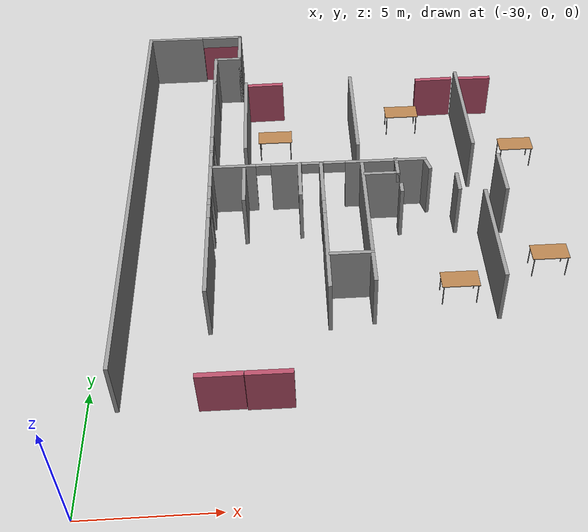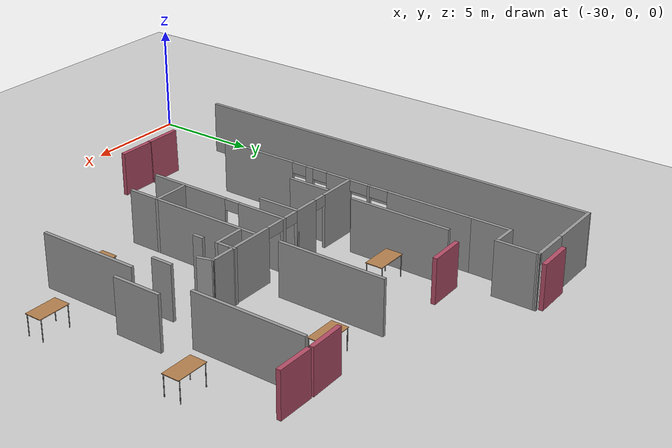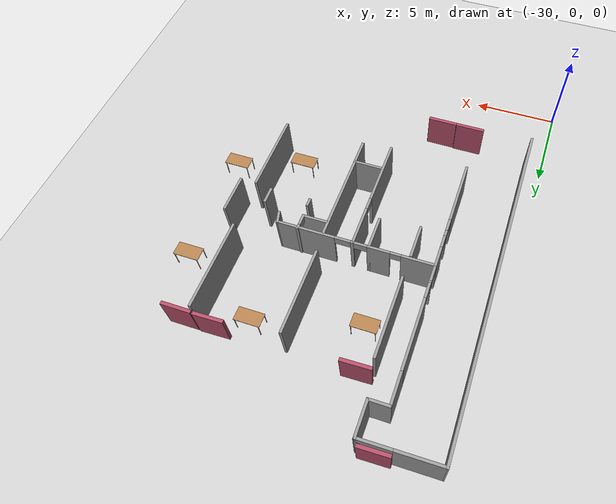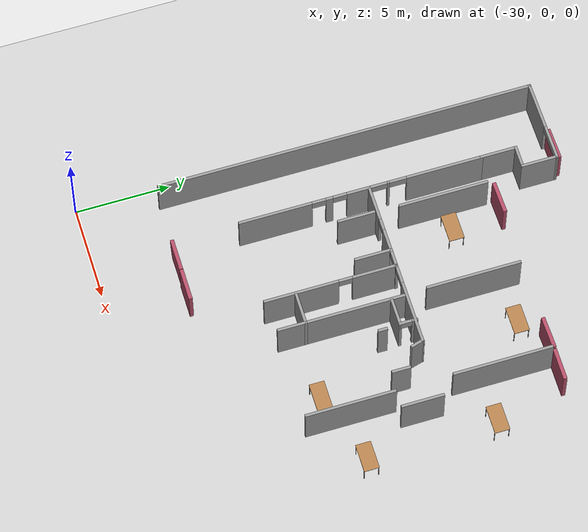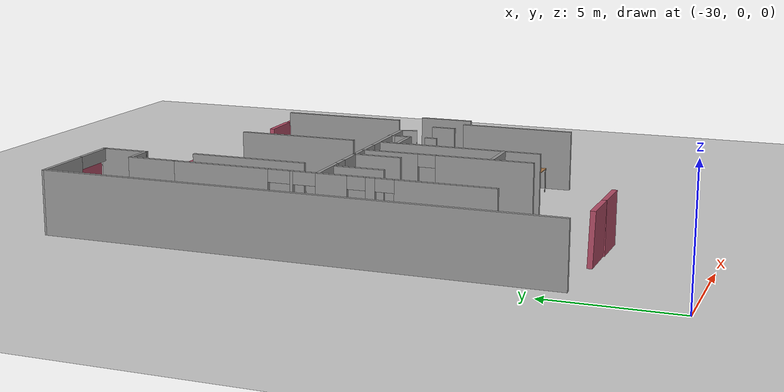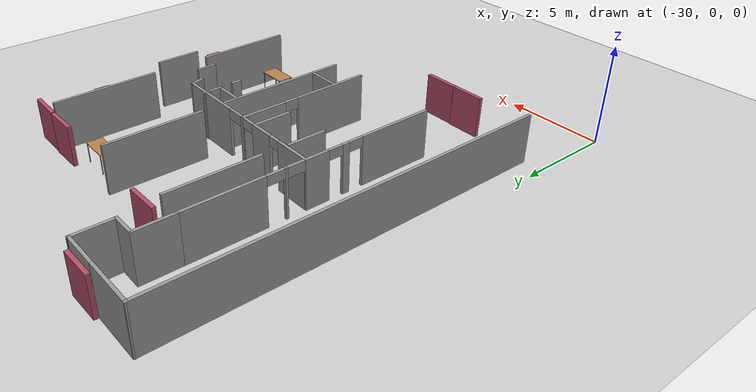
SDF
<sdf version="1.6">
 <world name="default">
  <model name="ground_plane">
   <static>1</static>
   <link name="link">
    <collision name="collision">
     <geometry><plane><normal>0 0 1</normal><size>100 100</size></plane></geometry>
     <surface><friction><ode><mu>100</mu><mu2>50</mu2></ode></friction></surface>
    </collision>
    <visual name="visual">
     <cast_shadows>0</cast_shadows>
     <geometry><plane><normal>0 0 1</normal><size>100 100</size></plane></geometry>
     <material>
      <script><uri>file://media/materials/scripts/gazebo.material</uri><name>Gazebo/Grey</name></script>
     </material>
    </visual>
   </link>
  </model>
  <model name="fin_se1f1.sdf">
   <pose>1.8125 -2.2901 0 0 -0 0</pose>
   <link name="Wall_0">
    <collision name="Wall_0_Collision">
     <geometry><box><size>20 0.15 2.5</size></box></geometry>
     <pose>0 0 1.25 0 -0 0</pose>
    </collision>
    <visual name="Wall_0_Visual">
     <pose>0 0 1.25 0 -0 0</pose>
     <geometry><box><size>20 0.15 2.5</size></box></geometry>
     <material>
      <script><uri>file://media/materials/scripts/gazebo.material</uri><name>Gazebo/Grey</name></script>
      <ambient>1 1 1 1</ambient>
     </material>
     <meta><layer>0</layer></meta>
    </visual>
    <pose>-30.7496 16.4496 0 0 0 -1.5708</pose>
   </link>
   <link name="Wall_100">
    <collision name="Wall_100_Collision">
     <geometry><box><size>2.25 0.15 2.5</size></box></geometry>
     <pose>0 0 1.25 0 -0 0</pose>
    </collision>
    <visual name="Wall_100_Visual">
     <pose>0 0 1.25 0 -0 0</pose>
     <geometry><box><size>2.25 0.15 2.5</size></box></geometry>
     <material>
      <script><uri>file://media/materials/scripts/gazebo.material</uri><name>Gazebo/Grey</name></script>
      <ambient>1 1 1 1</ambient>
     </material>
     <meta><layer>0</layer></meta>
    </visual>
    <pose>-15.464 15.7396 0 0 -0 1.5708</pose>
   </link>
   <link name="Wall_114">
    <collision name="Wall_114_Collision">
     <geometry><box><size>2 0.15 2.5</size></box></geometry>
     <pose>0 0 1.25 0 -0 0</pose>
    </collision>
    <visual name="Wall_114_Visual">
     <pose>0 0 1.25 0 -0 0</pose>
     <geometry><box><size>2 0.15 2.5</size></box></geometry>
     <material>
      <script><uri>file://media/materials/scripts/gazebo.material</uri><name>Gazebo/Grey</name></script>
      <ambient>1 1 1 1</ambient>
     </material>
     <meta><layer>0</layer></meta>
    </visual>
    <pose>-26.1645 15.6146 0 0 -0 1.5708</pose>
   </link>
   <link name="Wall_116">
    <collision name="Wall_116_Collision">
     <geometry><box><size>2 0.15 2.5</size></box></geometry>
     <pose>0 0 1.25 0 -0 0</pose>
    </collision>
    <visual name="Wall_116_Visual">
     <pose>0 0 1.25 0 -0 0</pose>
     <geometry><box><size>2 0.15 2.5</size></box></geometry>
     <material>
      <script><uri>file://media/materials/scripts/gazebo.material</uri><name>Gazebo/Grey</name></script>
      <ambient>1 1 1 1</ambient>
     </material>
     <meta><layer>0</layer></meta>
    </visual>
    <pose>-23.8638 15.7977 0 0 0 -1.5708</pose>
   </link>
   <link name="Wall_118">
    <collision name="Wall_118_Collision">
     <geometry><box><size>1.75 0.15 2.5</size></box></geometry>
     <pose>0 0 1.25 0 -0 0</pose>
    </collision>
    <visual name="Wall_118_Visual">
     <pose>0 0 1.25 0 -0 0</pose>
     <geometry><box><size>1.75 0.15 2.5</size></box></geometry>
     <material>
      <script><uri>file://media/materials/scripts/gazebo.material</uri><name>Gazebo/Grey</name></script>
      <ambient>1 1 1 1</ambient>
     </material>
     <meta><layer>0</layer></meta>
    </visual>
    <pose>-22.0422 11.426 0 0 -0 3.14159</pose>
   </link>
   <link name="Wall_120">
    <pose>-19.7977 16.3512 0 0 0 -1.5708</pose>
    <visual name="Wall_120_Visual_0">
     <pose>-0.341993 0 1.25 0 -0 0</pose>
     <geometry><box><size>0.316013 0.15 2.5</size></box></geometry>
     <material>
      <script><uri>file://media/materials/scripts/gazebo.material</uri><name>Gazebo/Grey</name></script>
      <ambient>1 1 1 1</ambient>
     </material>
     <meta><layer>0</layer></meta>
    </visual>
    <collision name="Wall_120_Collision_0">
     <geometry><box><size>0.316013 0.15 2.5</size></box></geometry>
     <pose>-0.341993 0 1.25 0 -0 0</pose>
    </collision>
    <visual name="Wall_120_Visual_1">
     <pose>0.158007 0 2.25 0 -0 0</pose>
     <geometry><box><size>0.683987 0.15 0.5</size></box></geometry>
     <material>
      <script><uri>file://media/materials/scripts/gazebo.material</uri><name>Gazebo/Grey</name></script>
      <ambient>1 1 1 1</ambient>
     </material>
     <meta><layer>0</layer></meta>
    </visual>
    <collision name="Wall_120_Collision_1">
     <geometry><box><size>0.683987 0.15 0.5</size></box></geometry>
     <pose>0.158007 0 2.25 0 -0 0</pose>
    </collision>
   </link>
   <link name="Wall_121">
    <collision name="Wall_121_Collision">
     <geometry><box><size>1.5 0.15 2.5</size></box></geometry>
     <pose>0 0 1.25 0 -0 0</pose>
    </collision>
    <visual name="Wall_121_Visual">
     <pose>0 0 1.25 0 -0 0</pose>
     <geometry><box><size>1.5 0.15 2.5</size></box></geometry>
     <material>
      <script><uri>file://media/materials/scripts/gazebo.material</uri><name>Gazebo/Grey</name></script>
      <ambient>1 1 1 1</ambient>
     </material>
     <meta><layer>0</layer></meta>
    </visual>
    <pose>-20.4727 15.9262 0 0 -0 3.14159</pose>
   </link>
   <link name="Wall_123">
    <collision name="Wall_123_Collision">
     <geometry><box><size>0.5 0.15 2.5</size></box></geometry>
     <pose>0 0 1.25 0 -0 0</pose>
    </collision>
    <visual name="Wall_123_Visual">
     <pose>0 0 1.25 0 -0 0</pose>
     <geometry><box><size>0.5 0.15 2.5</size></box></geometry>
     <material>
      <script><uri>file://media/materials/scripts/gazebo.material</uri><name>Gazebo/Grey</name></script>
      <ambient>1 1 1 1</ambient>
     </material>
     <meta><layer>0</layer></meta>
    </visual>
    <pose>-19.7442 14.9961 0 0 0 -1.5708</pose>
   </link>
   <link name="Wall_125">
    <collision name="Wall_125_Collision">
     <geometry><box><size>1 0.15 2.5</size></box></geometry>
     <pose>0 0 1.25 0 -0 0</pose>
    </collision>
    <visual name="Wall_125_Visual">
     <pose>0 0 1.25 0 -0 0</pose>
     <geometry><box><size>1 0.15 2.5</size></box></geometry>
     <material>
      <script><uri>file://media/materials/scripts/gazebo.material</uri><name>Gazebo/Grey</name></script>
      <ambient>1 1 1 1</ambient>
     </material>
     <meta><layer>0</layer></meta>
    </visual>
    <pose>-17.39 15.2276 0 0 0 -1.5708</pose>
   </link>
   <link name="Wall_23">
    <collision name="Wall_23_Collision">
     <geometry><box><size>2 0.15 2.5</size></box></geometry>
     <pose>0 0 1.25 0 -0 0</pose>
    </collision>
    <visual name="Wall_23_Visual">
     <pose>0 0 1.25 0 -0 0</pose>
     <geometry><box><size>2 0.15 2.5</size></box></geometry>
     <material>
      <script><uri>file://media/materials/scripts/gazebo.material</uri><name>Gazebo/Grey</name></script>
      <ambient>1 1 1 1</ambient>
     </material>
     <meta><layer>0</layer></meta>
    </visual>
    <pose>-27.5496 23.6496 0 0 -0 1.5708</pose>
   </link>
   <link name="Wall_24">
    <collision name="Wall_24_Collision">
     <geometry><box><size>1.25 0.15 2.5</size></box></geometry>
     <pose>0 0 1.25 0 -0 0</pose>
    </collision>
    <visual name="Wall_24_Visual">
     <pose>0 0 1.25 0 -0 0</pose>
     <geometry><box><size>1.25 0.15 2.5</size></box></geometry>
     <material>
      <script><uri>file://media/materials/scripts/gazebo.material</uri><name>Gazebo/Grey</name></script>
      <ambient>1 1 1 1</ambient>
     </material>
     <meta><layer>0</layer></meta>
    </visual>
    <pose>-26.9996 24.5746 0 0 -0 0</pose>
   </link>
   <link name="Wall_25">
    <collision name="Wall_25_Collision">
     <geometry><box><size>2 0.15 2.5</size></box></geometry>
     <pose>0 0 1.25 0 -0 0</pose>
    </collision>
    <visual name="Wall_25_Visual">
     <pose>0 0 1.25 0 -0 0</pose>
     <geometry><box><size>2 0.15 2.5</size></box></geometry>
     <material>
      <script><uri>file://media/materials/scripts/gazebo.material</uri><name>Gazebo/Grey</name></script>
      <ambient>1 1 1 1</ambient>
     </material>
     <meta><layer>0</layer></meta>
    </visual>
    <pose>-26.4496 25.4996 0 0 -0 1.5708</pose>
   </link>
   <link name="Wall_27">
    <pose>-28.5996 26.3996 0 0 0 -3.12996</pose>
    <visual name="Wall_27_Visual_0">
     <pose>-2.20066 0 1.25 0 -0 0</pose>
     <geometry><box><size>0.048973 0.15 2.5</size></box></geometry>
     <material>
      <script><uri>file://media/materials/scripts/gazebo.material</uri><name>Gazebo/Grey</name></script>
      <ambient>1 1 1 1</ambient>
     </material>
     <meta><layer>0</layer></meta>
    </visual>
    <collision name="Wall_27_Collision_0">
     <geometry><box><size>0.048973 0.15 2.5</size></box></geometry>
     <pose>-2.20066 0 1.25 0 -0 0</pose>
    </collision>
    <visual name="Wall_27_Visual_1">
     <pose>0.939694 0 1.25 0 -0 0</pose>
     <geometry><box><size>2.5709 0.15 2.5</size></box></geometry>
     <material>
      <script><uri>file://media/materials/scripts/gazebo.material</uri><name>Gazebo/Grey</name></script>
      <ambient>1 1 1 1</ambient>
     </material>
     <meta><layer>0</layer></meta>
    </visual>
    <collision name="Wall_27_Collision_1">
     <geometry><box><size>2.5709 0.15 2.5</size></box></geometry>
     <pose>0.939694 0 1.25 0 -0 0</pose>
    </collision>
    <visual name="Wall_27_Visual_2">
     <pose>-1.26096 0 2.25 0 -0 0</pose>
     <geometry><box><size>1.83041 0.15 0.5</size></box></geometry>
     <material>
      <script><uri>file://media/materials/scripts/gazebo.material</uri><name>Gazebo/Grey</name></script>
      <ambient>1 1 1 1</ambient>
     </material>
     <meta><layer>0</layer></meta>
    </visual>
    <collision name="Wall_27_Collision_2">
     <geometry><box><size>1.83041 0.15 0.5</size></box></geometry>
     <pose>-1.26096 0 2.25 0 -0 0</pose>
    </collision>
   </link>
   <link name="Wall_29">
    <pose>-27.5496 16.2996 0 0 0 -1.5708</pose>
    <visual name="Wall_29_Visual_0">
     <pose>-4.45394 0 1.25 0 -0 0</pose>
     <geometry><box><size>4.09211 0.15 2.5</size></box></geometry>
     <material>
      <script><uri>file://media/materials/scripts/gazebo.material</uri><name>Gazebo/Grey</name></script>
      <ambient>1 1 1 1</ambient>
     </material>
     <meta><layer>0</layer></meta>
    </visual>
    <collision name="Wall_29_Collision_0">
     <geometry><box><size>4.09211 0.15 2.5</size></box></geometry>
     <pose>-4.45394 0 1.25 0 -0 0</pose>
    </collision>
    <visual name="Wall_29_Visual_1">
     <pose>-1.44499 0 1.25 0 -0 0</pose>
     <geometry><box><size>0.125793 0.15 2.5</size></box></geometry>
     <material>
      <script><uri>file://media/materials/scripts/gazebo.material</uri><name>Gazebo/Grey</name></script>
      <ambient>1 1 1 1</ambient>
     </material>
     <meta><layer>0</layer></meta>
    </visual>
    <collision name="Wall_29_Collision_1">
     <geometry><box><size>0.125793 0.15 2.5</size></box></geometry>
     <pose>-1.44499 0 1.25 0 -0 0</pose>
    </collision>
    <visual name="Wall_29_Visual_2">
     <pose>0.143983 0 1.25 0 -0 0</pose>
     <geometry><box><size>1.25215 0.15 2.5</size></box></geometry>
     <material>
      <script><uri>file://media/materials/scripts/gazebo.material</uri><name>Gazebo/Grey</name></script>
      <ambient>1 1 1 1</ambient>
     </material>
     <meta><layer>0</layer></meta>
    </visual>
    <collision name="Wall_29_Collision_2">
     <geometry><box><size>1.25215 0.15 2.5</size></box></geometry>
     <pose>0.143983 0 1.25 0 -0 0</pose>
    </collision>
    <visual name="Wall_29_Visual_3">
     <pose>1.69273 0 1.25 0 -0 0</pose>
     <geometry><box><size>0.367155 0.15 2.5</size></box></geometry>
     <material>
      <script><uri>file://media/materials/scripts/gazebo.material</uri><name>Gazebo/Grey</name></script>
      <ambient>1 1 1 1</ambient>
     </material>
     <meta><layer>0</layer></meta>
    </visual>
    <collision name="Wall_29_Collision_3">
     <geometry><box><size>0.367155 0.15 2.5</size></box></geometry>
     <pose>1.69273 0 1.25 0 -0 0</pose>
    </collision>
    <visual name="Wall_29_Visual_4">
     <pose>4.5577 0 1.25 0 -0 0</pose>
     <geometry><box><size>3.8846 0.15 2.5</size></box></geometry>
     <material>
      <script><uri>file://media/materials/scripts/gazebo.material</uri><name>Gazebo/Grey</name></script>
      <ambient>1 1 1 1</ambient>
     </material>
     <meta><layer>0</layer></meta>
    </visual>
    <collision name="Wall_29_Collision_4">
     <geometry><box><size>3.8846 0.15 2.5</size></box></geometry>
     <pose>4.5577 0 1.25 0 -0 0</pose>
    </collision>
    <visual name="Wall_29_Visual_5">
     <pose>-1.95789 0 2.25 0 -0 0</pose>
     <geometry><box><size>0.9 0.15 0.5</size></box></geometry>
     <material>
      <script><uri>file://media/materials/scripts/gazebo.material</uri><name>Gazebo/Grey</name></script>
      <ambient>1 1 1 1</ambient>
     </material>
     <meta><layer>0</layer></meta>
    </visual>
    <collision name="Wall_29_Collision_5">
     <geometry><box><size>0.9 0.15 0.5</size></box></geometry>
     <pose>-1.95789 0 2.25 0 -0 0</pose>
    </collision>
    <visual name="Wall_29_Visual_6">
     <pose>-0.932093 0 2.25 0 -0 0</pose>
     <geometry><box><size>0.9 0.15 0.5</size></box></geometry>
     <material>
      <script><uri>file://media/materials/scripts/gazebo.material</uri><name>Gazebo/Grey</name></script>
      <ambient>1 1 1 1</ambient>
     </material>
     <meta><layer>0</layer></meta>
    </visual>
    <collision name="Wall_29_Collision_6">
     <geometry><box><size>0.9 0.15 0.5</size></box></geometry>
     <pose>-0.932093 0 2.25 0 -0 0</pose>
    </collision>
    <visual name="Wall_29_Visual_7">
     <pose>1.1396 0 2.25 0 -0 0</pose>
     <geometry><box><size>0.739091 0.15 0.5</size></box></geometry>
     <material>
      <script><uri>file://media/materials/scripts/gazebo.material</uri><name>Gazebo/Grey</name></script>
      <ambient>1 1 1 1</ambient>
     </material>
     <meta><layer>0</layer></meta>
    </visual>
    <collision name="Wall_29_Collision_7">
     <geometry><box><size>0.739091 0.15 0.5</size></box></geometry>
     <pose>1.1396 0 2.25 0 -0 0</pose>
    </collision>
    <visual name="Wall_29_Visual_8">
     <pose>2.24585 0 2.25 0 -0 0</pose>
     <geometry><box><size>0.739091 0.15 0.5</size></box></geometry>
     <material>
      <script><uri>file://media/materials/scripts/gazebo.material</uri><name>Gazebo/Grey</name></script>
      <ambient>1 1 1 1</ambient>
     </material>
     <meta><layer>0</layer></meta>
    </visual>
    <collision name="Wall_29_Collision_8">
     <geometry><box><size>0.739091 0.15 0.5</size></box></geometry>
     <pose>2.24585 0 2.25 0 -0 0</pose>
    </collision>
   </link>
   <link name="Wall_67">
    <collision name="Wall_67_Collision">
     <geometry><box><size>4.75 0.15 2.5</size></box></geometry>
     <pose>0 0 1.25 0 -0 0</pose>
    </collision>
    <visual name="Wall_67_Visual">
     <pose>0 0 1.25 0 -0 0</pose>
     <geometry><box><size>4.75 0.15 2.5</size></box></geometry>
     <material>
      <script><uri>file://media/materials/scripts/gazebo.material</uri><name>Gazebo/Grey</name></script>
      <ambient>1 1 1 1</ambient>
     </material>
     <meta><layer>0</layer></meta>
    </visual>
    <pose>-26.1152 20.2344 0 0 0 -1.5708</pose>
   </link>
   <link name="Wall_84">
    <collision name="Wall_84_Collision">
     <geometry><box><size>5.25 0.15 2.5</size></box></geometry>
     <pose>0 0 1.25 0 -0 0</pose>
    </collision>
    <visual name="Wall_84_Visual">
     <pose>0 0 1.25 0 -0 0</pose>
     <geometry><box><size>5.25 0.15 2.5</size></box></geometry>
     <material>
      <script><uri>file://media/materials/scripts/gazebo.material</uri><name>Gazebo/Grey</name></script>
      <ambient>1 1 1 1</ambient>
     </material>
     <meta><layer>0</layer></meta>
    </visual>
    <pose>-16.3938 20.2305 0 0 0 -1.5708</pose>
   </link>
   <link name="Wall_86">
    <collision name="Wall_86_Collision">
     <geometry><box><size>5 0.15 2.5</size></box></geometry>
     <pose>0 0 1.25 0 -0 0</pose>
    </collision>
    <visual name="Wall_86_Visual">
     <pose>0 0 1.25 0 -0 0</pose>
     <geometry><box><size>5 0.15 2.5</size></box></geometry>
     <material>
      <script><uri>file://media/materials/scripts/gazebo.material</uri><name>Gazebo/Grey</name></script>
      <ambient>1 1 1 1</ambient>
     </material>
     <meta><layer>0</layer></meta>
    </visual>
    <pose>-21.316 20.294 0 0 0 -1.5708</pose>
   </link>
   <link name="Wall_91">
    <pose>-23.0235 16.7227 0 0 -0 0</pose>
    <visual name="Wall_91_Visual_0">
     <pose>-3.57417 0 1.25 0 -0 0</pose>
     <geometry><box><size>1.85166 0.15 2.5</size></box></geometry>
     <material>
      <script><uri>file://media/materials/scripts/gazebo.material</uri><name>Gazebo/Grey</name></script>
      <ambient>1 1 1 1</ambient>
     </material>
     <meta><layer>0</layer></meta>
    </visual>
    <collision name="Wall_91_Collision_0">
     <geometry><box><size>1.85166 0.15 2.5</size></box></geometry>
     <pose>-3.57417 0 1.25 0 -0 0</pose>
    </collision>
    <visual name="Wall_91_Visual_1">
     <pose>-1.38374 0 1.25 0 -0 0</pose>
     <geometry><box><size>1.29238 0.15 2.5</size></box></geometry>
     <material>
      <script><uri>file://media/materials/scripts/gazebo.material</uri><name>Gazebo/Grey</name></script>
      <ambient>1 1 1 1</ambient>
     </material>
     <meta><layer>0</layer></meta>
    </visual>
    <collision name="Wall_91_Collision_1">
     <geometry><box><size>1.29238 0.15 2.5</size></box></geometry>
     <pose>-1.38374 0 1.25 0 -0 0</pose>
    </collision>
    <visual name="Wall_91_Visual_2">
     <pose>0.094604 0 1.25 0 -0 0</pose>
     <geometry><box><size>0.186132 0.15 2.5</size></box></geometry>
     <material>
      <script><uri>file://media/materials/scripts/gazebo.material</uri><name>Gazebo/Grey</name></script>
      <ambient>1 1 1 1</ambient>
     </material>
     <meta><layer>0</layer></meta>
    </visual>
    <collision name="Wall_91_Collision_2">
     <geometry><box><size>0.186132 0.15 2.5</size></box></geometry>
     <pose>0.094604 0 1.25 0 -0 0</pose>
    </collision>
    <visual name="Wall_91_Visual_3">
     <pose>2.79384 0 1.25 0 -0 0</pose>
     <geometry><box><size>3.41233 0.15 2.5</size></box></geometry>
     <material>
      <script><uri>file://media/materials/scripts/gazebo.material</uri><name>Gazebo/Grey</name></script>
      <ambient>1 1 1 1</ambient>
     </material>
     <meta><layer>0</layer></meta>
    </visual>
    <collision name="Wall_91_Collision_3">
     <geometry><box><size>3.41233 0.15 2.5</size></box></geometry>
     <pose>2.79384 0 1.25 0 -0 0</pose>
    </collision>
    <visual name="Wall_91_Visual_4">
     <pose>-2.33914 0 2.25 0 -0 0</pose>
     <geometry><box><size>0.61841 0.15 0.5</size></box></geometry>
     <material>
      <script><uri>file://media/materials/scripts/gazebo.material</uri><name>Gazebo/Grey</name></script>
      <ambient>1 1 1 1</ambient>
     </material>
     <meta><layer>0</layer></meta>
    </visual>
    <collision name="Wall_91_Collision_4">
     <geometry><box><size>0.61841 0.15 0.5</size></box></geometry>
     <pose>-2.33914 0 2.25 0 -0 0</pose>
    </collision>
    <visual name="Wall_91_Visual_5">
     <pose>-0.368008 0 2.25 0 -0 0</pose>
     <geometry><box><size>0.739091 0.15 0.5</size></box></geometry>
     <material>
      <script><uri>file://media/materials/scripts/gazebo.material</uri><name>Gazebo/Grey</name></script>
      <ambient>1 1 1 1</ambient>
     </material>
     <meta><layer>0</layer></meta>
    </visual>
    <collision name="Wall_91_Collision_5">
     <geometry><box><size>0.739091 0.15 0.5</size></box></geometry>
     <pose>-0.368008 0 2.25 0 -0 0</pose>
    </collision>
    <visual name="Wall_91_Visual_6">
     <pose>0.637671 0 2.25 0 -0 0</pose>
     <geometry><box><size>0.9 0.15 0.5</size></box></geometry>
     <material>
      <script><uri>file://media/materials/scripts/gazebo.material</uri><name>Gazebo/Grey</name></script>
      <ambient>1 1 1 1</ambient>
     </material>
     <meta><layer>0</layer></meta>
    </visual>
    <collision name="Wall_91_Collision_6">
     <geometry><box><size>0.9 0.15 0.5</size></box></geometry>
     <pose>0.637671 0 2.25 0 -0 0</pose>
    </collision>
   </link>
   <link name="Wall_92">
    <collision name="Wall_92_Collision">
     <geometry><box><size>0.75 0.15 2.5</size></box></geometry>
     <pose>0 0 1.25 0 -0 0</pose>
    </collision>
    <visual name="Wall_92_Visual">
     <pose>0 0 1.25 0 -0 0</pose>
     <geometry><box><size>0.75 0.15 2.5</size></box></geometry>
     <material>
      <script><uri>file://media/materials/scripts/gazebo.material</uri><name>Gazebo/Grey</name></script>
      <ambient>1 1 1 1</ambient>
     </material>
     <meta><layer>0</layer></meta>
    </visual>
    <pose>-18.5209 16.4329 0 0 0 -1.309</pose>
   </link>
   <link name="Wall_94">
    <collision name="Wall_94_Collision">
     <geometry><box><size>6.75 0.15 2.5</size></box></geometry>
     <pose>0 0 1.25 0 -0 0</pose>
    </collision>
    <visual name="Wall_94_Visual">
     <pose>0 0 1.25 0 -0 0</pose>
     <geometry><box><size>6.75 0.15 2.5</size></box></geometry>
     <material>
      <script><uri>file://media/materials/scripts/gazebo.material</uri><name>Gazebo/Grey</name></script>
      <ambient>1 1 1 1</ambient>
     </material>
     <meta><layer>0</layer></meta>
    </visual>
    <pose>-21.2422 13.3157 0 0 0 -1.5708</pose>
   </link>
   <link name="Wall_96">
    <pose>-22.9543 13.2442 0 0 0 -1.5708</pose>
    <visual name="Wall_96_Visual_0">
     <pose>-2.32948 0 1.25 0 -0 0</pose>
     <geometry><box><size>2.34105 0.15 2.5</size></box></geometry>
     <material>
      <script><uri>file://media/materials/scripts/gazebo.material</uri><name>Gazebo/Grey</name></script>
      <ambient>1 1 1 1</ambient>
     </material>
     <meta><layer>0</layer></meta>
    </visual>
    <collision name="Wall_96_Collision_0">
     <geometry><box><size>2.34105 0.15 2.5</size></box></geometry>
     <pose>-2.32948 0 1.25 0 -0 0</pose>
    </collision>
    <visual name="Wall_96_Visual_1">
     <pose>1.53001 0 1.25 0 -0 0</pose>
     <geometry><box><size>3.93998 0.15 2.5</size></box></geometry>
     <material>
      <script><uri>file://media/materials/scripts/gazebo.material</uri><name>Gazebo/Grey</name></script>
      <ambient>1 1 1 1</ambient>
     </material>
     <meta><layer>0</layer></meta>
    </visual>
    <collision name="Wall_96_Collision_1">
     <geometry><box><size>3.93998 0.15 2.5</size></box></geometry>
     <pose>1.53001 0 1.25 0 -0 0</pose>
    </collision>
    <visual name="Wall_96_Visual_2">
     <pose>-0.799464 0 2.25 0 -0 0</pose>
     <geometry><box><size>0.718978 0.15 0.5</size></box></geometry>
     <material>
      <script><uri>file://media/materials/scripts/gazebo.material</uri><name>Gazebo/Grey</name></script>
      <ambient>1 1 1 1</ambient>
     </material>
     <meta><layer>0</layer></meta>
    </visual>
    <collision name="Wall_96_Collision_2">
     <geometry><box><size>0.718978 0.15 0.5</size></box></geometry>
     <pose>-0.799464 0 2.25 0 -0 0</pose>
    </collision>
   </link>
   <link name="Wall_98">
    <collision name="Wall_98_Collision">
     <geometry><box><size>4.75 0.15 2.5</size></box></geometry>
     <pose>0 0 1.25 0 -0 0</pose>
    </collision>
    <visual name="Wall_98_Visual">
     <pose>0 0 1.25 0 -0 0</pose>
     <geometry><box><size>4.75 0.15 2.5</size></box></geometry>
     <material>
      <script><uri>file://media/materials/scripts/gazebo.material</uri><name>Gazebo/Grey</name></script>
      <ambient>1 1 1 1</ambient>
     </material>
     <meta><layer>0</layer></meta>
    </visual>
    <pose>-16.3735 12.2826 0 0 0 -1.5708</pose>
   </link>
   <static>1</static>
  </model>
  <model name="table">
   <static>1</static>
   <link name="link">
    <collision name="surface">
     <pose>0 0 1 0 -0 0</pose>
     <geometry><box><size>1.5 0.8 0.03</size></box></geometry>
     <surface><friction><ode><mu>0.6</mu><mu2>0.6</mu2></ode></friction></surface>
    </collision>
    <visual name="visual1">
     <pose>0 0 1 0 -0 0</pose>
     <geometry><box><size>1.5 0.8 0.03</size></box></geometry>
     <material>
      <script><uri>file://media/materials/scripts/gazebo.material</uri><name>Gazebo/Wood</name></script>
     </material>
    </visual>
    <collision name="front_left_leg">
     <pose>0.68 0.38 0.5 0 -0 0</pose>
     <geometry><cylinder><radius>0.02</radius><length>1</length></cylinder></geometry>
    </collision>
    <visual name="front_left_leg">
     <pose>0.68 0.38 0.5 0 -0 0</pose>
     <geometry><cylinder><radius>0.02</radius><length>1</length></cylinder></geometry>
     <material>
      <script><uri>file://media/materials/scripts/gazebo.material</uri><name>Gazebo/Grey</name></script>
     </material>
    </visual>
    <collision name="front_right_leg">
     <pose>0.68 -0.38 0.5 0 -0 0</pose>
     <geometry><cylinder><radius>0.02</radius><length>1</length></cylinder></geometry>
    </collision>
    <visual name="front_right_leg">
     <pose>0.68 -0.38 0.5 0 -0 0</pose>
     <geometry><cylinder><radius>0.02</radius><length>1</length></cylinder></geometry>
     <material>
      <script><uri>file://media/materials/scripts/gazebo.material</uri><name>Gazebo/Grey</name></script>
     </material>
    </visual>
    <collision name="back_right_leg">
     <pose>-0.68 -0.38 0.5 0 -0 0</pose>
     <geometry><cylinder><radius>0.02</radius><length>1</length></cylinder></geometry>
    </collision>
    <visual name="back_right_leg">
     <pose>-0.68 -0.38 0.5 0 -0 0</pose>
     <geometry><cylinder><radius>0.02</radius><length>1</length></cylinder></geometry>
     <material>
      <script><uri>file://media/materials/scripts/gazebo.material</uri><name>Gazebo/Grey</name></script>
     </material>
    </visual>
    <collision name="back_left_leg">
     <pose>-0.68 0.38 0.5 0 -0 0</pose>
     <geometry><cylinder><radius>0.02</radius><length>1</length></cylinder></geometry>
    </collision>
    <visual name="back_left_leg">
     <pose>-0.68 0.38 0.5 0 -0 0</pose>
     <geometry><cylinder><radius>0.02</radius><length>1</length></cylinder></geometry>
     <material>
      <script><uri>file://media/materials/scripts/gazebo.material</uri><name>Gazebo/Grey</name></script>
     </material>
    </visual>
   </link>
   <pose>-23.0593 18.0717 0 0 -0 0</pose>
  </model>
  <model name="table_0">
   <static>1</static>
   <link name="link">
    <collision name="surface">
     <pose>0 0 1 0 -0 0</pose>
     <geometry><box><size>1.5 0.8 0.03</size></box></geometry>
     <surface><friction><ode><mu>0.6</mu><mu2>0.6</mu2></ode></friction></surface>
    </collision>
    <visual name="visual1">
     <pose>0 0 1 0 -0 0</pose>
     <geometry><box><size>1.5 0.8 0.03</size></box></geometry>
     <material>
      <script><uri>file://media/materials/scripts/gazebo.material</uri><name>Gazebo/Wood</name></script>
     </material>
    </visual>
    <collision name="front_left_leg">
     <pose>0.68 0.38 0.5 0 -0 0</pose>
     <geometry><cylinder><radius>0.02</radius><length>1</length></cylinder></geometry>
    </collision>
    <visual name="front_left_leg">
     <pose>0.68 0.38 0.5 0 -0 0</pose>
     <geometry><cylinder><radius>0.02</radius><length>1</length></cylinder></geometry>
     <material>
      <script><uri>file://media/materials/scripts/gazebo.material</uri><name>Gazebo/Grey</name></script>
     </material>
    </visual>
    <collision name="front_right_leg">
     <pose>0.68 -0.38 0.5 0 -0 0</pose>
     <geometry><cylinder><radius>0.02</radius><length>1</length></cylinder></geometry>
    </collision>
    <visual name="front_right_leg">
     <pose>0.68 -0.38 0.5 0 -0 0</pose>
     <geometry><cylinder><radius>0.02</radius><length>1</length></cylinder></geometry>
     <material>
      <script><uri>file://media/materials/scripts/gazebo.material</uri><name>Gazebo/Grey</name></script>
     </material>
    </visual>
    <collision name="back_right_leg">
     <pose>-0.68 -0.38 0.5 0 -0 0</pose>
     <geometry><cylinder><radius>0.02</radius><length>1</length></cylinder></geometry>
    </collision>
    <visual name="back_right_leg">
     <pose>-0.68 -0.38 0.5 0 -0 0</pose>
     <geometry><cylinder><radius>0.02</radius><length>1</length></cylinder></geometry>
     <material>
      <script><uri>file://media/materials/scripts/gazebo.material</uri><name>Gazebo/Grey</name></script>
     </material>
    </visual>
    <collision name="back_left_leg">
     <pose>-0.68 0.38 0.5 0 -0 0</pose>
     <geometry><cylinder><radius>0.02</radius><length>1</length></cylinder></geometry>
    </collision>
    <visual name="back_left_leg">
     <pose>-0.68 0.38 0.5 0 -0 0</pose>
     <geometry><cylinder><radius>0.02</radius><length>1</length></cylinder></geometry>
     <material>
      <script><uri>file://media/materials/scripts/gazebo.material</uri><name>Gazebo/Grey</name></script>
     </material>
    </visual>
   </link>
   <pose>-17.1552 19.6086 0 0 -0 0</pose>
  </model>
  <model name="table_1">
   <static>1</static>
   <link name="link">
    <collision name="surface">
     <pose>0 0 1 0 -0 0</pose>
     <geometry><box><size>1.5 0.8 0.03</size></box></geometry>
     <surface><friction><ode><mu>0.6</mu><mu2>0.6</mu2></ode></friction></surface>
    </collision>
    <visual name="visual1">
     <pose>0 0 1 0 -0 0</pose>
     <geometry><box><size>1.5 0.8 0.03</size></box></geometry>
     <material>
      <script><uri>file://media/materials/scripts/gazebo.material</uri><name>Gazebo/Wood</name></script>
     </material>
    </visual>
    <collision name="front_left_leg">
     <pose>0.68 0.38 0.5 0 -0 0</pose>
     <geometry><cylinder><radius>0.02</radius><length>1</length></cylinder></geometry>
    </collision>
    <visual name="front_left_leg">
     <pose>0.68 0.38 0.5 0 -0 0</pose>
     <geometry><cylinder><radius>0.02</radius><length>1</length></cylinder></geometry>
     <material>
      <script><uri>file://media/materials/scripts/gazebo.material</uri><name>Gazebo/Grey</name></script>
     </material>
    </visual>
    <collision name="front_right_leg">
     <pose>0.68 -0.38 0.5 0 -0 0</pose>
     <geometry><cylinder><radius>0.02</radius><length>1</length></cylinder></geometry>
    </collision>
    <visual name="front_right_leg">
     <pose>0.68 -0.38 0.5 0 -0 0</pose>
     <geometry><cylinder><radius>0.02</radius><length>1</length></cylinder></geometry>
     <material>
      <script><uri>file://media/materials/scripts/gazebo.material</uri><name>Gazebo/Grey</name></script>
     </material>
    </visual>
    <collision name="back_right_leg">
     <pose>-0.68 -0.38 0.5 0 -0 0</pose>
     <geometry><cylinder><radius>0.02</radius><length>1</length></cylinder></geometry>
    </collision>
    <visual name="back_right_leg">
     <pose>-0.68 -0.38 0.5 0 -0 0</pose>
     <geometry><cylinder><radius>0.02</radius><length>1</length></cylinder></geometry>
     <material>
      <script><uri>file://media/materials/scripts/gazebo.material</uri><name>Gazebo/Grey</name></script>
     </material>
    </visual>
    <collision name="back_left_leg">
     <pose>-0.68 0.38 0.5 0 -0 0</pose>
     <geometry><cylinder><radius>0.02</radius><length>1</length></cylinder></geometry>
    </collision>
    <visual name="back_left_leg">
     <pose>-0.68 0.38 0.5 0 -0 0</pose>
     <geometry><cylinder><radius>0.02</radius><length>1</length></cylinder></geometry>
     <material>
      <script><uri>file://media/materials/scripts/gazebo.material</uri><name>Gazebo/Grey</name></script>
     </material>
    </visual>
   </link>
   <pose>-12.2601 16.9623 0 0 -0 0</pose>
  </model>
  <model name="table_2">
   <static>1</static>
   <link name="link">
    <collision name="surface">
     <pose>0 0 1 0 -0 0</pose>
     <geometry><box><size>1.5 0.8 0.03</size></box></geometry>
     <surface><friction><ode><mu>0.6</mu><mu2>0.6</mu2></ode></friction></surface>
    </collision>
    <visual name="visual1">
     <pose>0 0 1 0 -0 0</pose>
     <geometry><box><size>1.5 0.8 0.03</size></box></geometry>
     <material>
      <script><uri>file://media/materials/scripts/gazebo.material</uri><name>Gazebo/Wood</name></script>
     </material>
    </visual>
    <collision name="front_left_leg">
     <pose>0.68 0.38 0.5 0 -0 0</pose>
     <geometry><cylinder><radius>0.02</radius><length>1</length></cylinder></geometry>
    </collision>
    <visual name="front_left_leg">
     <pose>0.68 0.38 0.5 0 -0 0</pose>
     <geometry><cylinder><radius>0.02</radius><length>1</length></cylinder></geometry>
     <material>
      <script><uri>file://media/materials/scripts/gazebo.material</uri><name>Gazebo/Grey</name></script>
     </material>
    </visual>
    <collision name="front_right_leg">
     <pose>0.68 -0.38 0.5 0 -0 0</pose>
     <geometry><cylinder><radius>0.02</radius><length>1</length></cylinder></geometry>
    </collision>
    <visual name="front_right_leg">
     <pose>0.68 -0.38 0.5 0 -0 0</pose>
     <geometry><cylinder><radius>0.02</radius><length>1</length></cylinder></geometry>
     <material>
      <script><uri>file://media/materials/scripts/gazebo.material</uri><name>Gazebo/Grey</name></script>
     </material>
    </visual>
    <collision name="back_right_leg">
     <pose>-0.68 -0.38 0.5 0 -0 0</pose>
     <geometry><cylinder><radius>0.02</radius><length>1</length></cylinder></geometry>
    </collision>
    <visual name="back_right_leg">
     <pose>-0.68 -0.38 0.5 0 -0 0</pose>
     <geometry><cylinder><radius>0.02</radius><length>1</length></cylinder></geometry>
     <material>
      <script><uri>file://media/materials/scripts/gazebo.material</uri><name>Gazebo/Grey</name></script>
     </material>
    </visual>
    <collision name="back_left_leg">
     <pose>-0.68 0.38 0.5 0 -0 0</pose>
     <geometry><cylinder><radius>0.02</radius><length>1</length></cylinder></geometry>
    </collision>
    <visual name="back_left_leg">
     <pose>-0.68 0.38 0.5 0 -0 0</pose>
     <geometry><cylinder><radius>0.02</radius><length>1</length></cylinder></geometry>
     <material>
      <script><uri>file://media/materials/scripts/gazebo.material</uri><name>Gazebo/Grey</name></script>
     </material>
    </visual>
   </link>
   <pose>-15.9954 8.87778 0 0 -0 0</pose>
  </model>
  <model name="table_3">
   <static>1</static>
   <link name="link">
    <collision name="surface">
     <pose>0 0 1 0 -0 0</pose>
     <geometry><box><size>1.5 0.8 0.03</size></box></geometry>
     <surface><friction><ode><mu>0.6</mu><mu2>0.6</mu2></ode></friction></surface>
    </collision>
    <visual name="visual1">
     <pose>0 0 1 0 -0 0</pose>
     <geometry><box><size>1.5 0.8 0.03</size></box></geometry>
     <material>
      <script><uri>file://media/materials/scripts/gazebo.material</uri><name>Gazebo/Wood</name></script>
     </material>
    </visual>
    <collision name="front_left_leg">
     <pose>0.68 0.38 0.5 0 -0 0</pose>
     <geometry><cylinder><radius>0.02</radius><length>1</length></cylinder></geometry>
    </collision>
    <visual name="front_left_leg">
     <pose>0.68 0.38 0.5 0 -0 0</pose>
     <geometry><cylinder><radius>0.02</radius><length>1</length></cylinder></geometry>
     <material>
      <script><uri>file://media/materials/scripts/gazebo.material</uri><name>Gazebo/Grey</name></script>
     </material>
    </visual>
    <collision name="front_right_leg">
     <pose>0.68 -0.38 0.5 0 -0 0</pose>
     <geometry><cylinder><radius>0.02</radius><length>1</length></cylinder></geometry>
    </collision>
    <visual name="front_right_leg">
     <pose>0.68 -0.38 0.5 0 -0 0</pose>
     <geometry><cylinder><radius>0.02</radius><length>1</length></cylinder></geometry>
     <material>
      <script><uri>file://media/materials/scripts/gazebo.material</uri><name>Gazebo/Grey</name></script>
     </material>
    </visual>
    <collision name="back_right_leg">
     <pose>-0.68 -0.38 0.5 0 -0 0</pose>
     <geometry><cylinder><radius>0.02</radius><length>1</length></cylinder></geometry>
    </collision>
    <visual name="back_right_leg">
     <pose>-0.68 -0.38 0.5 0 -0 0</pose>
     <geometry><cylinder><radius>0.02</radius><length>1</length></cylinder></geometry>
     <material>
      <script><uri>file://media/materials/scripts/gazebo.material</uri><name>Gazebo/Grey</name></script>
     </material>
    </visual>
    <collision name="back_left_leg">
     <pose>-0.68 0.38 0.5 0 -0 0</pose>
     <geometry><cylinder><radius>0.02</radius><length>1</length></cylinder></geometry>
    </collision>
    <visual name="back_left_leg">
     <pose>-0.68 0.38 0.5 0 -0 0</pose>
     <geometry><cylinder><radius>0.02</radius><length>1</length></cylinder></geometry>
     <material>
      <script><uri>file://media/materials/scripts/gazebo.material</uri><name>Gazebo/Grey</name></script>
     </material>
    </visual>
   </link>
   <pose>-12.1812 10.1292 0 0 -0 0</pose>
  </model>
  <model name="doorOutside">
   <link name="link">
    <pose>0.155539 -0.366282 0.216958 0 -0 0</pose>
    <inertial>
     <mass>2.13199</mass>
     <inertia>
      <ixx>0.452656</ixx>
      <ixy>0</ixy>
      <ixz>0</ixz>
      <iyy>0.796738</iyy>
      <iyz>0</iyz>
      <izz>0.699414</izz>
     </inertia>
    </inertial>
    <visual name="visual">
     <geometry><box><size>1.71368 0.198843 2.05986</size></box></geometry>
     <material>
      <script><name>Gazebo/Grey</name><uri>file://media/materials/scripts/gazebo.material</uri></script>
      <ambient>0.7 0.3 0.4 1</ambient>
      <diffuse>0.7 0.7 0.7 1</diffuse>
      <specular>0.01 0.01 0.01 1</specular>
      <emissive>0 0 0 1</emissive>
      <shader type="vertex"><normal_map>__default__</normal_map></shader>
      <lighting>0</lighting>
     </material>
    </visual>
    <collision name="collision">
     <geometry><box><size>1.71368 0.198843 2.05986</size></box></geometry>
     <surface>
      <friction>
       <ode><mu>1</mu><mu2>1</mu2><fdir1>0 0 0</fdir1><slip1>0</slip1><slip2>0</slip2></ode>
       <torsional>
        <coefficient>1</coefficient>
        <patch_radius>0</patch_radius>
        <surface_radius>0</surface_radius>
        <use_patch_radius>1</use_patch_radius>
        <ode><slip>0</slip></ode>
       </torsional>
      </friction>
      <bounce><restitution_coefficient>0</restitution_coefficient><threshold>1e+06</threshold></bounce>
      <contact>
       <collide_without_contact>0</collide_without_contact>
       <collide_without_contact_bitmask>1</collide_without_contact_bitmask>
       <collide_bitmask>1</collide_bitmask>
       <ode>
        <soft_cfm>0</soft_cfm>
        <soft_erp>0.2</soft_erp>
        <kp>1e+13</kp>
        <kd>1</kd>
        <max_vel>0.01</max_vel>
        <min_depth>0</min_depth>
       </ode>
       <bullet>
        <split_impulse>1</split_impulse>
        <split_impulse_penetration_threshold>-0.01</split_impulse_penetration_threshold>
        <soft_cfm>0</soft_cfm>
        <soft_erp>0.2</soft_erp>
        <kp>1e+13</kp>
        <kd>1</kd>
       </bullet>
      </contact>
     </surface>
    </collision>
   </link>
   <static>1</static>
   <pose>-25.7598 24.6794 0.812972 0 -0 0.023128</pose>
  </model>
  <model name="doorOutside_clone">
   <link name="link">
    <pose>0.155539 -0.366282 0.216958 0 -0 0</pose>
    <inertial>
     <mass>2.13199</mass>
     <inertia>
      <ixx>0.452656</ixx>
      <ixy>0</ixy>
      <ixz>0</ixz>
      <iyy>0.796738</iyy>
      <iyz>0</iyz>
      <izz>0.699414</izz>
     </inertia>
    </inertial>
    <visual name="visual">
     <geometry><box><size>1.71368 0.198843 2.05986</size></box></geometry>
     <material>
      <script><name>Gazebo/Grey</name><uri>file://media/materials/scripts/gazebo.material</uri></script>
      <ambient>0.7 0.3 0.4 1</ambient>
      <diffuse>0.7 0.7 0.7 1</diffuse>
      <specular>0.01 0.01 0.01 1</specular>
      <emissive>0 0 0 1</emissive>
      <shader type="vertex"><normal_map>__default__</normal_map></shader>
      <lighting>0</lighting>
     </material>
    </visual>
    <collision name="collision">
     <geometry><box><size>1.71368 0.198843 2.05986</size></box></geometry>
     <surface>
      <friction>
       <ode><mu>1</mu><mu2>1</mu2><fdir1>0 0 0</fdir1><slip1>0</slip1><slip2>0</slip2></ode>
       <torsional>
        <coefficient>1</coefficient>
        <patch_radius>0</patch_radius>
        <surface_radius>0</surface_radius>
        <use_patch_radius>1</use_patch_radius>
        <ode><slip>0</slip></ode>
       </torsional>
      </friction>
      <bounce><restitution_coefficient>0</restitution_coefficient><threshold>1e+06</threshold></bounce>
      <contact>
       <collide_without_contact>0</collide_without_contact>
       <collide_without_contact_bitmask>1</collide_without_contact_bitmask>
       <collide_bitmask>1</collide_bitmask>
       <ode>
        <soft_cfm>0</soft_cfm>
        <soft_erp>0.2</soft_erp>
        <kp>1e+13</kp>
        <kd>1</kd>
        <max_vel>0.01</max_vel>
        <min_depth>0</min_depth>
       </ode>
       <bullet>
        <split_impulse>1</split_impulse>
        <split_impulse_penetration_threshold>-0.01</split_impulse_penetration_threshold>
        <soft_cfm>0</soft_cfm>
        <soft_erp>0.2</soft_erp>
        <kp>1e+13</kp>
        <kd>1</kd>
       </bullet>
      </contact>
     </surface>
    </collision>
   </link>
   <static>1</static>
   <pose>-23.6444 21.0534 0.812972 0 -0 0.023097</pose>
  </model>
  <model name="doorOutside_clone_0">
   <link name="link">
    <pose>0.155539 -0.366282 0.216958 0 -0 0</pose>
    <inertial>
     <mass>2.13199</mass>
     <inertia>
      <ixx>0.452656</ixx>
      <ixy>0</ixy>
      <ixz>0</ixz>
      <iyy>0.796738</iyy>
      <iyz>0</iyz>
      <izz>0.699414</izz>
     </inertia>
    </inertial>
    <visual name="visual">
     <geometry><box><size>1.71368 0.198843 2.05986</size></box></geometry>
     <material>
      <script><name>Gazebo/Grey</name><uri>file://media/materials/scripts/gazebo.material</uri></script>
      <ambient>0.7 0.3 0.4 1</ambient>
      <diffuse>0.7 0.7 0.7 1</diffuse>
      <specular>0.01 0.01 0.01 1</specular>
      <emissive>0 0 0 1</emissive>
      <shader type="vertex"><normal_map>__default__</normal_map></shader>
      <lighting>0</lighting>
     </material>
    </visual>
    <collision name="collision">
     <geometry><box><size>1.71368 0.198843 2.05986</size></box></geometry>
     <surface>
      <friction>
       <ode><mu>1</mu><mu2>1</mu2><fdir1>0 0 0</fdir1><slip1>0</slip1><slip2>0</slip2></ode>
       <torsional>
        <coefficient>1</coefficient>
        <patch_radius>0</patch_radius>
        <surface_radius>0</surface_radius>
        <use_patch_radius>1</use_patch_radius>
        <ode><slip>0</slip></ode>
       </torsional>
      </friction>
      <bounce><restitution_coefficient>0</restitution_coefficient><threshold>1e+06</threshold></bounce>
      <contact>
       <collide_without_contact>0</collide_without_contact>
       <collide_without_contact_bitmask>1</collide_without_contact_bitmask>
       <collide_bitmask>1</collide_bitmask>
       <ode>
        <soft_cfm>0</soft_cfm>
        <soft_erp>0.2</soft_erp>
        <kp>1e+13</kp>
        <kd>1</kd>
        <max_vel>0.01</max_vel>
        <min_depth>0</min_depth>
       </ode>
       <bullet>
        <split_impulse>1</split_impulse>
        <split_impulse_penetration_threshold>-0.01</split_impulse_penetration_threshold>
        <soft_cfm>0</soft_cfm>
        <soft_erp>0.2</soft_erp>
        <kp>1e+13</kp>
        <kd>1</kd>
       </bullet>
      </contact>
     </surface>
    </collision>
   </link>
   <static>1</static>
   <pose>-15.712 21.0347 0.812963 1e-06 5e-06 0.023116</pose>
  </model>
  <model name="doorOutside_clone_1">
   <link name="link">
    <pose>0.155539 -0.366282 0.216958 0 -0 0</pose>
    <inertial>
     <mass>2.13199</mass>
     <inertia>
      <ixx>0.452656</ixx>
      <ixy>0</ixy>
      <ixz>0</ixz>
      <iyy>0.796738</iyy>
      <iyz>0</iyz>
      <izz>0.699414</izz>
     </inertia>
    </inertial>
    <visual name="visual">
     <geometry><box><size>1.71368 0.198843 2.05986</size></box></geometry>
     <material>
      <script><name>Gazebo/Grey</name><uri>file://media/materials/scripts/gazebo.material</uri></script>
      <ambient>0.7 0.3 0.4 1</ambient>
      <diffuse>0.7 0.7 0.7 1</diffuse>
      <specular>0.01 0.01 0.01 1</specular>
      <emissive>0 0 0 1</emissive>
      <shader type="vertex"><normal_map>__default__</normal_map></shader>
      <lighting>0</lighting>
     </material>
    </visual>
    <collision name="collision">
     <geometry><box><size>1.71368 0.198843 2.05986</size></box></geometry>
     <surface>
      <friction>
       <ode><mu>1</mu><mu2>1</mu2><fdir1>0 0 0</fdir1><slip1>0</slip1><slip2>0</slip2></ode>
       <torsional>
        <coefficient>1</coefficient>
        <patch_radius>0</patch_radius>
        <surface_radius>0</surface_radius>
        <use_patch_radius>1</use_patch_radius>
        <ode><slip>0</slip></ode>
       </torsional>
      </friction>
      <bounce><restitution_coefficient>0</restitution_coefficient><threshold>1e+06</threshold></bounce>
      <contact>
       <collide_without_contact>0</collide_without_contact>
       <collide_without_contact_bitmask>1</collide_without_contact_bitmask>
       <collide_bitmask>1</collide_bitmask>
       <ode>
        <soft_cfm>0</soft_cfm>
        <soft_erp>0.2</soft_erp>
        <kp>1e+13</kp>
        <kd>1</kd>
        <max_vel>0.01</max_vel>
        <min_depth>0</min_depth>
       </ode>
       <bullet>
        <split_impulse>1</split_impulse>
        <split_impulse_penetration_threshold>-0.01</split_impulse_penetration_threshold>
        <soft_cfm>0</soft_cfm>
        <soft_erp>0.2</soft_erp>
        <kp>1e+13</kp>
        <kd>1</kd>
       </bullet>
      </contact>
     </surface>
    </collision>
   </link>
   <static>1</static>
   <pose>-13.8904 21.029 0.812972 0 0 -0.003731</pose>
  </model>
  <model name="doorOutside_clone_8_clone_7_clone_2">
   <link name="link">
    <pose>0.155539 -0.366282 0.216958 0 -0 0</pose>
    <inertial>
     <mass>2.13199</mass>
     <inertia>
      <ixx>0.452656</ixx>
      <ixy>0</ixy>
      <ixz>0</ixz>
      <iyy>0.796738</iyy>
      <iyz>0</iyz>
      <izz>0.699414</izz>
     </inertia>
    </inertial>
    <visual name="visual">
     <geometry><box><size>1.71368 0.198843 2.05986</size></box></geometry>
     <material>
      <script><name>Gazebo/Grey</name><uri>file://media/materials/scripts/gazebo.material</uri></script>
      <ambient>0.7 0.3 0.4 1</ambient>
      <diffuse>0.7 0.7 0.7 1</diffuse>
      <specular>0.01 0.01 0.01 1</specular>
      <emissive>0 0 0 1</emissive>
      <shader type="vertex"><normal_map>__default__</normal_map></shader>
      <lighting>0</lighting>
     </material>
    </visual>
    <collision name="collision">
     <geometry><box><size>1.71368 0.198843 2.05986</size></box></geometry>
     <surface>
      <friction>
       <ode><mu>1</mu><mu2>1</mu2><fdir1>0 0 0</fdir1><slip1>0</slip1><slip2>0</slip2></ode>
       <torsional>
        <coefficient>1</coefficient>
        <patch_radius>0</patch_radius>
        <surface_radius>0</surface_radius>
        <use_patch_radius>1</use_patch_radius>
        <ode><slip>0</slip></ode>
       </torsional>
      </friction>
      <bounce><restitution_coefficient>0</restitution_coefficient><threshold>1e+06</threshold></bounce>
      <contact>
       <collide_without_contact>0</collide_without_contact>
       <collide_without_contact_bitmask>1</collide_without_contact_bitmask>
       <collide_bitmask>1</collide_bitmask>
       <ode>
        <soft_cfm>0</soft_cfm>
        <soft_erp>0.2</soft_erp>
        <kp>1e+13</kp>
        <kd>1</kd>
        <max_vel>0.01</max_vel>
        <min_depth>0</min_depth>
       </ode>
       <bullet>
        <split_impulse>1</split_impulse>
        <split_impulse_penetration_threshold>-0.01</split_impulse_penetration_threshold>
        <soft_cfm>0</soft_cfm>
        <soft_erp>0.2</soft_erp>
        <kp>1e+13</kp>
        <kd>1</kd>
       </bullet>
      </contact>
     </surface>
    </collision>
   </link>
   <static>1</static>
   <pose>-23.5819 4.42818 0.814859 0.004083 -5e-06 -0.004333</pose>
  </model>
  <model name="doorOutside_clone_8_clone_7_clone_3">
   <link name="link">
    <pose>0.155539 -0.366282 0.216958 0 -0 0</pose>
    <inertial>
     <mass>2.13199</mass>
     <inertia>
      <ixx>0.452656</ixx>
      <ixy>0</ixy>
      <ixz>0</ixz>
      <iyy>0.796738</iyy>
      <iyz>0</iyz>
      <izz>0.699414</izz>
     </inertia>
    </inertial>
    <visual name="visual">
     <geometry><box><size>1.71368 0.198843 2.05986</size></box></geometry>
     <material>
      <script><name>Gazebo/Grey</name><uri>file://media/materials/scripts/gazebo.material</uri></script>
      <ambient>0.7 0.3 0.4 1</ambient>
      <diffuse>0.7 0.7 0.7 1</diffuse>
      <specular>0.01 0.01 0.01 1</specular>
      <emissive>0 0 0 1</emissive>
      <shader type="vertex"><normal_map>__default__</normal_map></shader>
      <lighting>0</lighting>
     </material>
    </visual>
    <collision name="collision">
     <geometry><box><size>1.71368 0.198843 2.05986</size></box></geometry>
     <surface>
      <friction>
       <ode><mu>1</mu><mu2>1</mu2><fdir1>0 0 0</fdir1><slip1>0</slip1><slip2>0</slip2></ode>
       <torsional>
        <coefficient>1</coefficient>
        <patch_radius>0</patch_radius>
        <surface_radius>0</surface_radius>
        <use_patch_radius>1</use_patch_radius>
        <ode><slip>0</slip></ode>
       </torsional>
      </friction>
      <bounce><restitution_coefficient>0</restitution_coefficient><threshold>1e+06</threshold></bounce>
      <contact>
       <collide_without_contact>0</collide_without_contact>
       <collide_without_contact_bitmask>1</collide_without_contact_bitmask>
       <collide_bitmask>1</collide_bitmask>
       <ode>
        <soft_cfm>0</soft_cfm>
        <soft_erp>0.2</soft_erp>
        <kp>1e+13</kp>
        <kd>1</kd>
        <max_vel>0.01</max_vel>
        <min_depth>0</min_depth>
       </ode>
       <bullet>
        <split_impulse>1</split_impulse>
        <split_impulse_penetration_threshold>-0.01</split_impulse_penetration_threshold>
        <soft_cfm>0</soft_cfm>
        <soft_erp>0.2</soft_erp>
        <kp>1e+13</kp>
        <kd>1</kd>
       </bullet>
      </contact>
     </surface>
    </collision>
   </link>
   <static>1</static>
   <pose>-25.3182 4.45907 0.825573 0.027736 -0 0</pose>
  </model>
 </world>
</sdf>
